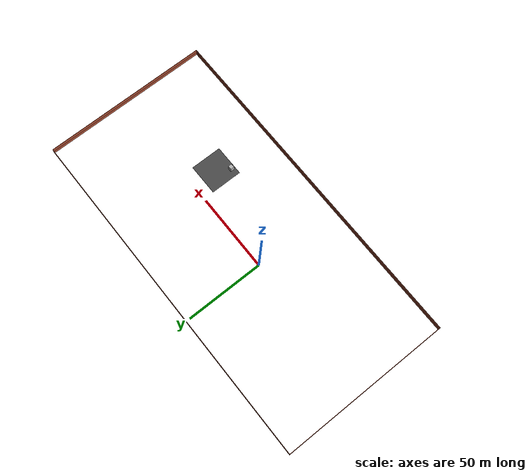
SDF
<sdf version="1.7">
 <world name="default">
  <physics name="default_physics" default="0" type="ode">
   <max_step_size>0.001</max_step_size>
   <real_time_factor>1</real_time_factor>
   <real_time_update_rate>1000</real_time_update_rate>
   <gravity>0 0 -9.8</gravity>
  </physics>
  <light name="sun" type="directional">
   <pose>0 0 1000 0 -0 0</pose>
   <cast_shadows>0</cast_shadows>
   <diffuse>0.8 0.8 0.8 1</diffuse>
   <specular>0.5 0.5 0.5 1</specular>
   <attenuation>
    <range>1000</range>
    <constant>0.9</constant>
    <linear>0.01</linear>
    <quadratic>0.001</quadratic>
   </attenuation>
   <direction>-0.5 0.1 -0.4</direction>
   <spot><inner_angle>0</inner_angle><outer_angle>0</outer_angle><falloff>0</falloff></spot>
  </light>
  <model name="ground_plane">
   <static>1</static>
   <link name="link">
    <collision name="collision_link_1">
     <geometry><plane><normal>0 0 1</normal><size>100 100</size></plane></geometry>
     <surface><friction><ode><mu>100</mu><mu2>50</mu2></ode></friction></surface>
    </collision>
   </link>
  </model>
  <model name="asphalt_plane_74">
   <static>1</static>
   <pose>61.581 -16.664 0 0 -0 0</pose>
   <link name="link">
    <visual name="visual_link_41">
     <geometry><box><size>20 20 0.05</size></box></geometry>
     <material>
      <script>
       <uri>model://asphalt_plane/materials/scripts</uri>
       <uri>model://asphalt_plane/materials/textures</uri>
       <name>vrc/asphalt</name>
      </script>
     </material>
    </visual>
   </link>
  </model>
  <gravity>0 0 -9.8</gravity>
  <magnetic_field>6e-06 2.3e-05 -4.2e-05</magnetic_field>
  <atmosphere type="adiabatic"/>
  <scene><ambient>0.4 0.4 0.4 1</ambient><background>0.7 0.7 0.7 1</background><shadows>1</shadows></scene>
  <spherical_coordinates>
   <surface_model>EARTH_WGS84</surface_model>
   <latitude_deg>0</latitude_deg>
   <longitude_deg>0</longitude_deg>
   <elevation>0</elevation>
   <heading_deg>0</heading_deg>
  </spherical_coordinates>
  <model name="Fire">
   <link name="link_0">
    <inertial>
     <mass>51.3237</mass>
     <inertia><ixx>147.461</ixx><ixy>0</ixy><ixz>0</ixz><iyy>147.461</iyy><iyz>0</iyz><izz>89.614</izz></inertia>
    </inertial>
    <pose>3e-06 5e-06 0 0 -0 0</pose>
    <visual name="visual_link_0_1">
     <geometry><box><size>2.44444 2.44445 3.69995</size></box></geometry>
     <material>
      <lighting>1</lighting>
      <script><uri>file://media/materials/scripts/gazebo.material</uri><name>Gazebo/Fire</name></script>
      <shader type="pixel"/>
     </material>
    </visual>
    <collision name="collision_link_0_1">
     <geometry><box><size>2.44444 2.44445 3.69995</size></box></geometry>
     <surface>
      <friction>
       <ode><mu>1</mu><mu2>1</mu2><fdir1>0 0 0</fdir1><slip1>0</slip1><slip2>0</slip2></ode>
       <torsional>
        <coefficient>1</coefficient>
        <patch_radius>0</patch_radius>
        <surface_radius>0</surface_radius>
        <use_patch_radius>1</use_patch_radius>
        <ode><slip>0</slip></ode>
       </torsional>
      </friction>
      <bounce><restitution_coefficient>0</restitution_coefficient><threshold>1e+06</threshold></bounce>
      <contact>
       <collide_without_contact>0</collide_without_contact>
       <collide_without_contact_bitmask>1</collide_without_contact_bitmask>
       <collide_bitmask>1</collide_bitmask>
       <ode>
        <soft_cfm>0</soft_cfm>
        <soft_erp>0.2</soft_erp>
        <kp>1e+13</kp>
        <kd>1</kd>
        <max_vel>0.01</max_vel>
        <min_depth>0</min_depth>
       </ode>
       <bullet>
        <split_impulse>1</split_impulse>
        <split_impulse_penetration_threshold>-0.01</split_impulse_penetration_threshold>
        <soft_cfm>0</soft_cfm>
        <soft_erp>0.2</soft_erp>
        <kp>1e+13</kp>
        <kd>1</kd>
       </bullet>
      </contact>
     </surface>
    </collision>
   </link>
   <static>0</static>
   <pose>56.112 -23.9065 3.2741 1e-06 -1e-06 0.015343</pose>
  </model>
  <model name="Wall">
   <link name="Wall_0">
    <pose>-1.11511 -54.0384 0 0 -0 3.14159</pose>
    <visual name="Wall_0_Visual">
     <pose>0 0 1.25 0 -0 0</pose>
     <geometry><box><size>220.25 0.15 2.5</size></box></geometry>
     <material>
      <script><uri>file://media/materials/scripts/gazebo.material</uri><name>Gazebo/Bricks</name></script>
      <ambient>1 1 1 1</ambient>
      <shader type="pixel"/>
     </material>
     <meta><layer>0</layer></meta>
    </visual>
    <collision name="Wall_0_Collision">
     <pose>0 0 1.25 0 -0 0</pose>
     <geometry><box><size>220.25 0.15 2.5</size></box></geometry>
     <surface>
      <friction>
       <ode><mu>1</mu><mu2>1</mu2><fdir1>0 0 0</fdir1><slip1>0</slip1><slip2>0</slip2></ode>
       <torsional>
        <coefficient>1</coefficient>
        <patch_radius>0</patch_radius>
        <surface_radius>0</surface_radius>
        <use_patch_radius>1</use_patch_radius>
        <ode><slip>0</slip></ode>
       </torsional>
      </friction>
      <bounce><restitution_coefficient>0</restitution_coefficient><threshold>1e+06</threshold></bounce>
      <contact>
       <collide_without_contact>0</collide_without_contact>
       <collide_without_contact_bitmask>1</collide_without_contact_bitmask>
       <collide_bitmask>1</collide_bitmask>
       <ode>
        <soft_cfm>0</soft_cfm>
        <soft_erp>0.2</soft_erp>
        <kp>1e+13</kp>
        <kd>1</kd>
        <max_vel>0.01</max_vel>
        <min_depth>0</min_depth>
       </ode>
       <bullet>
        <split_impulse>1</split_impulse>
        <split_impulse_penetration_threshold>-0.01</split_impulse_penetration_threshold>
        <soft_cfm>0</soft_cfm>
        <soft_erp>0.2</soft_erp>
        <kp>1e+13</kp>
        <kd>1</kd>
       </bullet>
      </contact>
     </surface>
    </collision>
   </link>
   <link name="Wall_10">
    <pose>110.942 -0.106164 0 0 0 -1.5708</pose>
    <visual name="Wall_10_Visual">
     <pose>0 0 1.25 0 -0 0</pose>
     <geometry><box><size>108 0.15 2.5</size></box></geometry>
     <material>
      <script><uri>file://media/materials/scripts/gazebo.material</uri><name>Gazebo/Bricks</name></script>
      <ambient>1 1 1 1</ambient>
      <shader type="pixel"/>
     </material>
     <meta><layer>0</layer></meta>
    </visual>
    <collision name="Wall_10_Collision">
     <pose>0 0 1.25 0 -0 0</pose>
     <geometry><box><size>108 0.15 2.5</size></box></geometry>
     <surface>
      <friction>
       <ode><mu>1</mu><mu2>1</mu2><fdir1>0 0 0</fdir1><slip1>0</slip1><slip2>0</slip2></ode>
       <torsional>
        <coefficient>1</coefficient>
        <patch_radius>0</patch_radius>
        <surface_radius>0</surface_radius>
        <use_patch_radius>1</use_patch_radius>
        <ode><slip>0</slip></ode>
       </torsional>
      </friction>
      <bounce><restitution_coefficient>0</restitution_coefficient><threshold>1e+06</threshold></bounce>
      <contact>
       <collide_without_contact>0</collide_without_contact>
       <collide_without_contact_bitmask>1</collide_without_contact_bitmask>
       <collide_bitmask>1</collide_bitmask>
       <ode>
        <soft_cfm>0</soft_cfm>
        <soft_erp>0.2</soft_erp>
        <kp>1e+13</kp>
        <kd>1</kd>
        <max_vel>0.01</max_vel>
        <min_depth>0</min_depth>
       </ode>
       <bullet>
        <split_impulse>1</split_impulse>
        <split_impulse_penetration_threshold>-0.01</split_impulse_penetration_threshold>
        <soft_cfm>0</soft_cfm>
        <soft_erp>0.2</soft_erp>
        <kp>1e+13</kp>
        <kd>1</kd>
       </bullet>
      </contact>
     </surface>
    </collision>
   </link>
   <link name="Wall_11">
    <pose>111.039 -53.9531 0 0 -0 0.680862</pose>
    <visual name="Wall_11_Visual">
     <pose>0 0 1.25 0 -0 0</pose>
     <geometry><box><size>0.398038 0.15 2.5</size></box></geometry>
     <material>
      <script><uri>file://media/materials/scripts/gazebo.material</uri><name>Gazebo/Grey</name></script>
      <ambient>1 1 1 1</ambient>
      <shader type="pixel"/>
     </material>
     <meta><layer>0</layer></meta>
    </visual>
    <collision name="Wall_11_Collision">
     <pose>0 0 1.25 0 -0 0</pose>
     <geometry><box><size>0.398038 0.15 2.5</size></box></geometry>
     <surface>
      <friction>
       <ode><mu>1</mu><mu2>1</mu2><fdir1>0 0 0</fdir1><slip1>0</slip1><slip2>0</slip2></ode>
       <torsional>
        <coefficient>1</coefficient>
        <patch_radius>0</patch_radius>
        <surface_radius>0</surface_radius>
        <use_patch_radius>1</use_patch_radius>
        <ode><slip>0</slip></ode>
       </torsional>
      </friction>
      <bounce><restitution_coefficient>0</restitution_coefficient><threshold>1e+06</threshold></bounce>
      <contact>
       <collide_without_contact>0</collide_without_contact>
       <collide_without_contact_bitmask>1</collide_without_contact_bitmask>
       <collide_bitmask>1</collide_bitmask>
       <ode>
        <soft_cfm>0</soft_cfm>
        <soft_erp>0.2</soft_erp>
        <kp>1e+13</kp>
        <kd>1</kd>
        <max_vel>0.01</max_vel>
        <min_depth>0</min_depth>
       </ode>
       <bullet>
        <split_impulse>1</split_impulse>
        <split_impulse_penetration_threshold>-0.01</split_impulse_penetration_threshold>
        <soft_cfm>0</soft_cfm>
        <soft_erp>0.2</soft_erp>
        <kp>1e+13</kp>
        <kd>1</kd>
       </bullet>
      </contact>
     </surface>
    </collision>
   </link>
   <link name="Wall_13">
    <pose>109.939 -54.0348 0 0 -0 0.00362</pose>
    <visual name="Wall_13_Visual">
     <pose>0 0 1.25 0 -0 0</pose>
     <geometry><box><size>2.15728 0.15 2.5</size></box></geometry>
     <material>
      <script><uri>file://media/materials/scripts/gazebo.material</uri><name>Gazebo/Bricks</name></script>
      <ambient>1 1 1 1</ambient>
      <shader type="pixel"/>
     </material>
     <meta><layer>0</layer></meta>
    </visual>
    <collision name="Wall_13_Collision">
     <pose>0 0 1.25 0 -0 0</pose>
     <geometry><box><size>2.15728 0.15 2.5</size></box></geometry>
     <surface>
      <friction>
       <ode><mu>1</mu><mu2>1</mu2><fdir1>0 0 0</fdir1><slip1>0</slip1><slip2>0</slip2></ode>
       <torsional>
        <coefficient>1</coefficient>
        <patch_radius>0</patch_radius>
        <surface_radius>0</surface_radius>
        <use_patch_radius>1</use_patch_radius>
        <ode><slip>0</slip></ode>
       </torsional>
      </friction>
      <bounce><restitution_coefficient>0</restitution_coefficient><threshold>1e+06</threshold></bounce>
      <contact>
       <collide_without_contact>0</collide_without_contact>
       <collide_without_contact_bitmask>1</collide_without_contact_bitmask>
       <collide_bitmask>1</collide_bitmask>
       <ode>
        <soft_cfm>0</soft_cfm>
        <soft_erp>0.2</soft_erp>
        <kp>1e+13</kp>
        <kd>1</kd>
        <max_vel>0.01</max_vel>
        <min_depth>0</min_depth>
       </ode>
       <bullet>
        <split_impulse>1</split_impulse>
        <split_impulse_penetration_threshold>-0.01</split_impulse_penetration_threshold>
        <soft_cfm>0</soft_cfm>
        <soft_erp>0.2</soft_erp>
        <kp>1e+13</kp>
        <kd>1</kd>
       </bullet>
      </contact>
     </surface>
    </collision>
   </link>
   <link name="Wall_15">
    <pose>-1.1151 -54.0384 2.5 0 -0 3.14159</pose>
    <visual name="Wall_15_Visual">
     <pose>0 0 1.25 0 -0 0</pose>
     <geometry><box><size>220.25 0.15 2.5</size></box></geometry>
     <material>
      <script><uri>file://media/materials/scripts/gazebo.material</uri><name>Gazebo/Bricks</name></script>
      <ambient>1 1 1 1</ambient>
      <shader type="pixel"/>
     </material>
     <meta><layer>1</layer></meta>
    </visual>
    <collision name="Wall_15_Collision">
     <pose>0 0 1.25 0 -0 0</pose>
     <geometry><box><size>220.25 0.15 2.5</size></box></geometry>
     <surface>
      <friction>
       <ode><mu>1</mu><mu2>1</mu2><fdir1>0 0 0</fdir1><slip1>0</slip1><slip2>0</slip2></ode>
       <torsional>
        <coefficient>1</coefficient>
        <patch_radius>0</patch_radius>
        <surface_radius>0</surface_radius>
        <use_patch_radius>1</use_patch_radius>
        <ode><slip>0</slip></ode>
       </torsional>
      </friction>
      <bounce><restitution_coefficient>0</restitution_coefficient><threshold>1e+06</threshold></bounce>
      <contact>
       <collide_without_contact>0</collide_without_contact>
       <collide_without_contact_bitmask>1</collide_without_contact_bitmask>
       <collide_bitmask>1</collide_bitmask>
       <ode>
        <soft_cfm>0</soft_cfm>
        <soft_erp>0.2</soft_erp>
        <kp>1e+13</kp>
        <kd>1</kd>
        <max_vel>0.01</max_vel>
        <min_depth>0</min_depth>
       </ode>
       <bullet>
        <split_impulse>1</split_impulse>
        <split_impulse_penetration_threshold>-0.01</split_impulse_penetration_threshold>
        <soft_cfm>0</soft_cfm>
        <soft_erp>0.2</soft_erp>
        <kp>1e+13</kp>
        <kd>1</kd>
       </bullet>
      </contact>
     </surface>
    </collision>
   </link>
   <link name="Wall_16">
    <pose>-111.165 0.01157 2.5 0 -0 1.5708</pose>
    <visual name="Wall_16_Visual">
     <pose>0 0 1.25 0 -0 0</pose>
     <geometry><box><size>108.25 0.15 2.5</size></box></geometry>
     <material>
      <script><uri>file://media/materials/scripts/gazebo.material</uri><name>Gazebo/Bricks</name></script>
      <ambient>1 1 1 1</ambient>
      <shader type="pixel"/>
     </material>
     <meta><layer>1</layer></meta>
    </visual>
    <collision name="Wall_16_Collision">
     <pose>0 0 1.25 0 -0 0</pose>
     <geometry><box><size>108.25 0.15 2.5</size></box></geometry>
     <surface>
      <friction>
       <ode><mu>1</mu><mu2>1</mu2><fdir1>0 0 0</fdir1><slip1>0</slip1><slip2>0</slip2></ode>
       <torsional>
        <coefficient>1</coefficient>
        <patch_radius>0</patch_radius>
        <surface_radius>0</surface_radius>
        <use_patch_radius>1</use_patch_radius>
        <ode><slip>0</slip></ode>
       </torsional>
      </friction>
      <bounce><restitution_coefficient>0</restitution_coefficient><threshold>1e+06</threshold></bounce>
      <contact>
       <collide_without_contact>0</collide_without_contact>
       <collide_without_contact_bitmask>1</collide_without_contact_bitmask>
       <collide_bitmask>1</collide_bitmask>
       <ode>
        <soft_cfm>0</soft_cfm>
        <soft_erp>0.2</soft_erp>
        <kp>1e+13</kp>
        <kd>1</kd>
        <max_vel>0.01</max_vel>
        <min_depth>0</min_depth>
       </ode>
       <bullet>
        <split_impulse>1</split_impulse>
        <split_impulse_penetration_threshold>-0.01</split_impulse_penetration_threshold>
        <soft_cfm>0</soft_cfm>
        <soft_erp>0.2</soft_erp>
        <kp>1e+13</kp>
        <kd>1</kd>
       </bullet>
      </contact>
     </surface>
    </collision>
   </link>
   <link name="Wall_17">
    <pose>-0.111471 53.9402 2.5 0 0 -0.001093</pose>
    <visual name="Wall_17_Visual">
     <pose>0 0 1.25 0 -0 0</pose>
     <geometry><box><size>222.257 0.15 2.5</size></box></geometry>
     <material>
      <script><uri>file://media/materials/scripts/gazebo.material</uri><name>Gazebo/Bricks</name></script>
      <ambient>1 1 1 1</ambient>
      <shader type="pixel"/>
     </material>
     <meta><layer>1</layer></meta>
    </visual>
    <collision name="Wall_17_Collision">
     <pose>0 0 1.25 0 -0 0</pose>
     <geometry><box><size>222.257 0.15 2.5</size></box></geometry>
     <surface>
      <friction>
       <ode><mu>1</mu><mu2>1</mu2><fdir1>0 0 0</fdir1><slip1>0</slip1><slip2>0</slip2></ode>
       <torsional>
        <coefficient>1</coefficient>
        <patch_radius>0</patch_radius>
        <surface_radius>0</surface_radius>
        <use_patch_radius>1</use_patch_radius>
        <ode><slip>0</slip></ode>
       </torsional>
      </friction>
      <bounce><restitution_coefficient>0</restitution_coefficient><threshold>1e+06</threshold></bounce>
      <contact>
       <collide_without_contact>0</collide_without_contact>
       <collide_without_contact_bitmask>1</collide_without_contact_bitmask>
       <collide_bitmask>1</collide_bitmask>
       <ode>
        <soft_cfm>0</soft_cfm>
        <soft_erp>0.2</soft_erp>
        <kp>1e+13</kp>
        <kd>1</kd>
        <max_vel>0.01</max_vel>
        <min_depth>0</min_depth>
       </ode>
       <bullet>
        <split_impulse>1</split_impulse>
        <split_impulse_penetration_threshold>-0.01</split_impulse_penetration_threshold>
        <soft_cfm>0</soft_cfm>
        <soft_erp>0.2</soft_erp>
        <kp>1e+13</kp>
        <kd>1</kd>
       </bullet>
      </contact>
     </surface>
    </collision>
   </link>
   <link name="Wall_18">
    <pose>110.942 -0.106164 2.5 0 0 -1.5708</pose>
    <visual name="Wall_18_Visual">
     <pose>0 0 1.25 0 -0 0</pose>
     <geometry><box><size>108 0.15 2.5</size></box></geometry>
     <material>
      <script><uri>file://media/materials/scripts/gazebo.material</uri><name>Gazebo/Bricks</name></script>
      <ambient>1 1 1 1</ambient>
      <shader type="pixel"/>
     </material>
     <meta><layer>1</layer></meta>
    </visual>
    <collision name="Wall_18_Collision">
     <pose>0 0 1.25 0 -0 0</pose>
     <geometry><box><size>108 0.15 2.5</size></box></geometry>
     <surface>
      <friction>
       <ode><mu>1</mu><mu2>1</mu2><fdir1>0 0 0</fdir1><slip1>0</slip1><slip2>0</slip2></ode>
       <torsional>
        <coefficient>1</coefficient>
        <patch_radius>0</patch_radius>
        <surface_radius>0</surface_radius>
        <use_patch_radius>1</use_patch_radius>
        <ode><slip>0</slip></ode>
       </torsional>
      </friction>
      <bounce><restitution_coefficient>0</restitution_coefficient><threshold>1e+06</threshold></bounce>
      <contact>
       <collide_without_contact>0</collide_without_contact>
       <collide_without_contact_bitmask>1</collide_without_contact_bitmask>
       <collide_bitmask>1</collide_bitmask>
       <ode>
        <soft_cfm>0</soft_cfm>
        <soft_erp>0.2</soft_erp>
        <kp>1e+13</kp>
        <kd>1</kd>
        <max_vel>0.01</max_vel>
        <min_depth>0</min_depth>
       </ode>
       <bullet>
        <split_impulse>1</split_impulse>
        <split_impulse_penetration_threshold>-0.01</split_impulse_penetration_threshold>
        <soft_cfm>0</soft_cfm>
        <soft_erp>0.2</soft_erp>
        <kp>1e+13</kp>
        <kd>1</kd>
       </bullet>
      </contact>
     </surface>
    </collision>
   </link>
   <link name="Wall_19">
    <pose>111.039 -53.9531 2.5 0 -0 0.680862</pose>
    <visual name="Wall_19_Visual">
     <pose>0 0 1.25 0 -0 0</pose>
     <geometry><box><size>0.398038 0.15 2.5</size></box></geometry>
     <material>
      <script><uri>file://media/materials/scripts/gazebo.material</uri><name>Gazebo/Grey</name></script>
      <ambient>1 1 1 1</ambient>
      <shader type="pixel"/>
     </material>
     <meta><layer>1</layer></meta>
    </visual>
    <collision name="Wall_19_Collision">
     <pose>0 0 1.25 0 -0 0</pose>
     <geometry><box><size>0.398038 0.15 2.5</size></box></geometry>
     <surface>
      <friction>
       <ode><mu>1</mu><mu2>1</mu2><fdir1>0 0 0</fdir1><slip1>0</slip1><slip2>0</slip2></ode>
       <torsional>
        <coefficient>1</coefficient>
        <patch_radius>0</patch_radius>
        <surface_radius>0</surface_radius>
        <use_patch_radius>1</use_patch_radius>
        <ode><slip>0</slip></ode>
       </torsional>
      </friction>
      <bounce><restitution_coefficient>0</restitution_coefficient><threshold>1e+06</threshold></bounce>
      <contact>
       <collide_without_contact>0</collide_without_contact>
       <collide_without_contact_bitmask>1</collide_without_contact_bitmask>
       <collide_bitmask>1</collide_bitmask>
       <ode>
        <soft_cfm>0</soft_cfm>
        <soft_erp>0.2</soft_erp>
        <kp>1e+13</kp>
        <kd>1</kd>
        <max_vel>0.01</max_vel>
        <min_depth>0</min_depth>
       </ode>
       <bullet>
        <split_impulse>1</split_impulse>
        <split_impulse_penetration_threshold>-0.01</split_impulse_penetration_threshold>
        <soft_cfm>0</soft_cfm>
        <soft_erp>0.2</soft_erp>
        <kp>1e+13</kp>
        <kd>1</kd>
       </bullet>
      </contact>
     </surface>
    </collision>
   </link>
   <link name="Wall_20">
    <pose>109.939 -54.0348 2.5 0 -0 0.00362</pose>
    <visual name="Wall_20_Visual">
     <pose>0 0 1.25 0 -0 0</pose>
     <geometry><box><size>2.15728 0.15 2.5</size></box></geometry>
     <material>
      <script><uri>file://media/materials/scripts/gazebo.material</uri><name>Gazebo/Bricks</name></script>
      <ambient>1 1 1 1</ambient>
      <shader type="pixel"/>
     </material>
     <meta><layer>1</layer></meta>
    </visual>
    <collision name="Wall_20_Collision">
     <pose>0 0 1.25 0 -0 0</pose>
     <geometry><box><size>2.15728 0.15 2.5</size></box></geometry>
     <surface>
      <friction>
       <ode><mu>1</mu><mu2>1</mu2><fdir1>0 0 0</fdir1><slip1>0</slip1><slip2>0</slip2></ode>
       <torsional>
        <coefficient>1</coefficient>
        <patch_radius>0</patch_radius>
        <surface_radius>0</surface_radius>
        <use_patch_radius>1</use_patch_radius>
        <ode><slip>0</slip></ode>
       </torsional>
      </friction>
      <bounce><restitution_coefficient>0</restitution_coefficient><threshold>1e+06</threshold></bounce>
      <contact>
       <collide_without_contact>0</collide_without_contact>
       <collide_without_contact_bitmask>1</collide_without_contact_bitmask>
       <collide_bitmask>1</collide_bitmask>
       <ode>
        <soft_cfm>0</soft_cfm>
        <soft_erp>0.2</soft_erp>
        <kp>1e+13</kp>
        <kd>1</kd>
        <max_vel>0.01</max_vel>
        <min_depth>0</min_depth>
       </ode>
       <bullet>
        <split_impulse>1</split_impulse>
        <split_impulse_penetration_threshold>-0.01</split_impulse_penetration_threshold>
        <soft_cfm>0</soft_cfm>
        <soft_erp>0.2</soft_erp>
        <kp>1e+13</kp>
        <kd>1</kd>
       </bullet>
      </contact>
     </surface>
    </collision>
   </link>
   <link name="Wall_8">
    <pose>-111.165 0.01157 0 0 -0 1.5708</pose>
    <visual name="Wall_8_Visual">
     <pose>0 0 1.25 0 -0 0</pose>
     <geometry><box><size>108.25 0.15 2.5</size></box></geometry>
     <material>
      <script><uri>file://media/materials/scripts/gazebo.material</uri><name>Gazebo/Bricks</name></script>
      <ambient>1 1 1 1</ambient>
      <shader type="pixel"/>
     </material>
     <meta><layer>0</layer></meta>
    </visual>
    <collision name="Wall_8_Collision">
     <pose>0 0 1.25 0 -0 0</pose>
     <geometry><box><size>108.25 0.15 2.5</size></box></geometry>
     <surface>
      <friction>
       <ode><mu>1</mu><mu2>1</mu2><fdir1>0 0 0</fdir1><slip1>0</slip1><slip2>0</slip2></ode>
       <torsional>
        <coefficient>1</coefficient>
        <patch_radius>0</patch_radius>
        <surface_radius>0</surface_radius>
        <use_patch_radius>1</use_patch_radius>
        <ode><slip>0</slip></ode>
       </torsional>
      </friction>
      <bounce><restitution_coefficient>0</restitution_coefficient><threshold>1e+06</threshold></bounce>
      <contact>
       <collide_without_contact>0</collide_without_contact>
       <collide_without_contact_bitmask>1</collide_without_contact_bitmask>
       <collide_bitmask>1</collide_bitmask>
       <ode>
        <soft_cfm>0</soft_cfm>
        <soft_erp>0.2</soft_erp>
        <kp>1e+13</kp>
        <kd>1</kd>
        <max_vel>0.01</max_vel>
        <min_depth>0</min_depth>
       </ode>
       <bullet>
        <split_impulse>1</split_impulse>
        <split_impulse_penetration_threshold>-0.01</split_impulse_penetration_threshold>
        <soft_cfm>0</soft_cfm>
        <soft_erp>0.2</soft_erp>
        <kp>1e+13</kp>
        <kd>1</kd>
       </bullet>
      </contact>
     </surface>
    </collision>
   </link>
   <link name="Wall_9">
    <pose>-0.111471 53.9402 0 0 0 -0.001093</pose>
    <visual name="Wall_9_Visual">
     <pose>0 0 1.25 0 -0 0</pose>
     <geometry><box><size>222.258 0.15 2.5</size></box></geometry>
     <material>
      <script><uri>file://media/materials/scripts/gazebo.material</uri><name>Gazebo/Bricks</name></script>
      <ambient>1 1 1 1</ambient>
      <shader type="pixel"/>
     </material>
     <meta><layer>0</layer></meta>
    </visual>
    <collision name="Wall_9_Collision">
     <pose>0 0 1.25 0 -0 0</pose>
     <geometry><box><size>222.258 0.15 2.5</size></box></geometry>
     <surface>
      <friction>
       <ode><mu>1</mu><mu2>1</mu2><fdir1>0 0 0</fdir1><slip1>0</slip1><slip2>0</slip2></ode>
       <torsional>
        <coefficient>1</coefficient>
        <patch_radius>0</patch_radius>
        <surface_radius>0</surface_radius>
        <use_patch_radius>1</use_patch_radius>
        <ode><slip>0</slip></ode>
       </torsional>
      </friction>
      <bounce><restitution_coefficient>0</restitution_coefficient><threshold>1e+06</threshold></bounce>
      <contact>
       <collide_without_contact>0</collide_without_contact>
       <collide_without_contact_bitmask>1</collide_without_contact_bitmask>
       <collide_bitmask>1</collide_bitmask>
       <ode>
        <soft_cfm>0</soft_cfm>
        <soft_erp>0.2</soft_erp>
        <kp>1e+13</kp>
        <kd>1</kd>
        <max_vel>0.01</max_vel>
        <min_depth>0</min_depth>
       </ode>
       <bullet>
        <split_impulse>1</split_impulse>
        <split_impulse_penetration_threshold>-0.01</split_impulse_penetration_threshold>
        <soft_cfm>0</soft_cfm>
        <soft_erp>0.2</soft_erp>
        <kp>1e+13</kp>
        <kd>1</kd>
       </bullet>
      </contact>
     </surface>
    </collision>
   </link>
   <static>1</static>
   <pose>19.8852 -1.1684 0 0 -0 0</pose>
  </model>
 </world>
</sdf>
